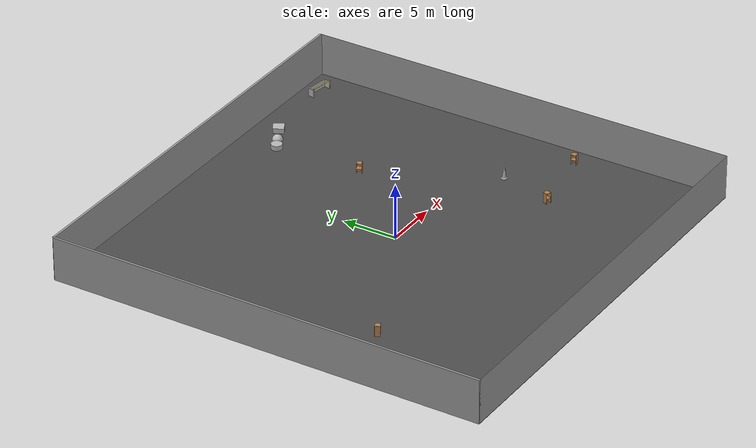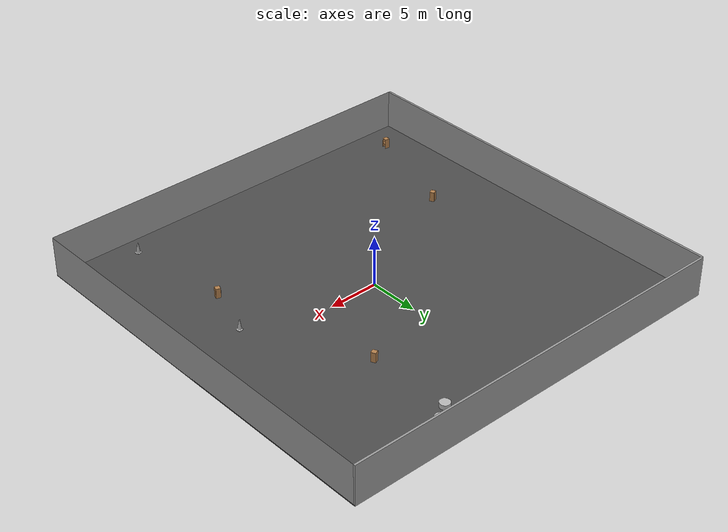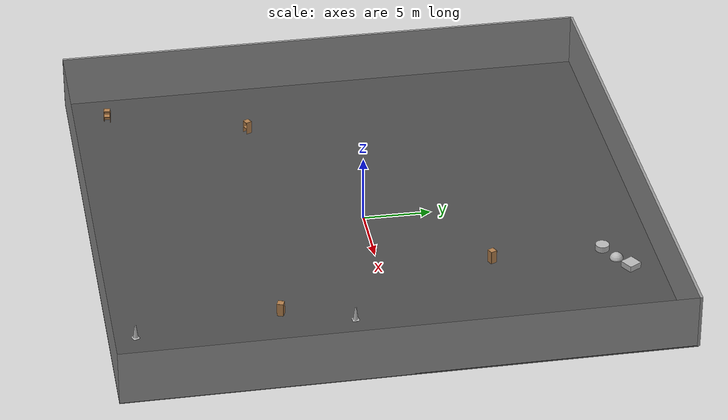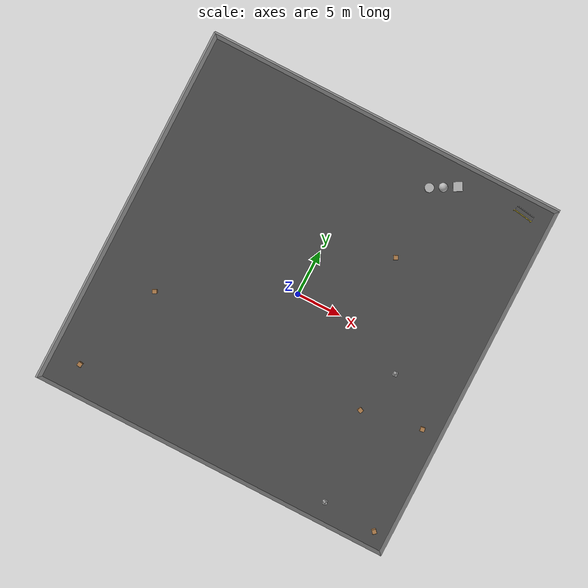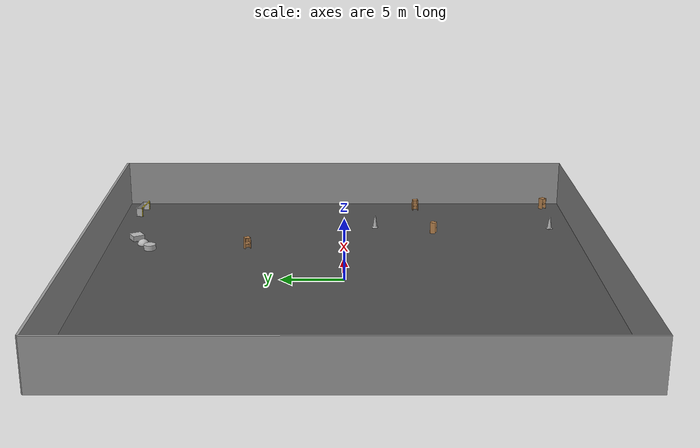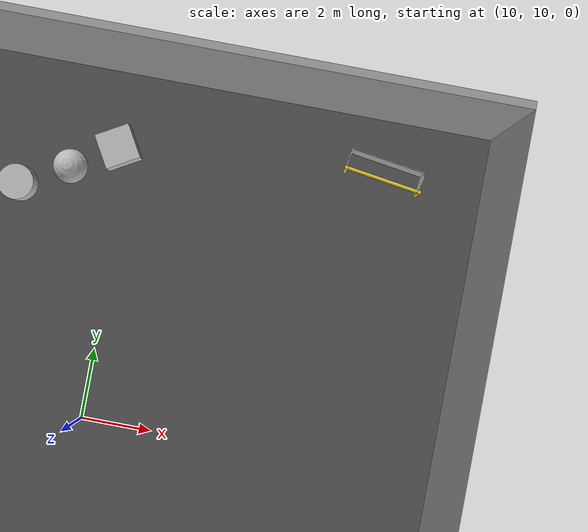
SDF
<sdf version="1.4">
 <world name="default">
  <light name="sun" type="directional">
   <pose>0 0 10 0 -0 0</pose>
   <diffuse>0.8 0.8 0.8 1</diffuse>
   <specular>0.2 0.2 0.2 1</specular>
   <attenuation>
    <range>1000</range>
    <constant>0.9</constant>
    <linear>0.01</linear>
    <quadratic>0.001</quadratic>
   </attenuation>
   <direction>-0.5 0.1 -0.9</direction>
  </light>
  <physics type="ode">
   <max_step_size>0.001</max_step_size>
   <real_time_factor>1</real_time_factor>
   <real_time_update_rate>1000</real_time_update_rate>
   <gravity>0 0 -9.8</gravity>
  </physics>
  <scene><ambient>0.4 0.4 0.4 1</ambient><background>0.7 0.7 0.7 1</background><shadows>1</shadows></scene>
  <model name="challenge_w1_0">
   <static>1</static>
   <link name="Wall_South">
    <collision name="Wall_South_Collision">
     <geometry><box><size>40 0 4</size></box></geometry>
     <pose>0 0 2 0 -0 0</pose>
    </collision>
    <visual name="Wall_South_Visual">
     <pose>0 0 2 0 -0 0</pose>
     <geometry><box><size>40 0 4</size></box></geometry>
     <material>
      <script><uri>file://media/materials/scripts/gazebo.material</uri><name>Gazebo/Grey</name></script>
     </material>
    </visual>
    <velocity_decay><linear>0</linear><angular>0</angular></velocity_decay>
    <pose>0 -20 0 0 -0 0</pose>
   </link>
   <link name="Wall_East">
    <collision name="Wall_21_Collision">
     <geometry><box><size>40 0 4</size></box></geometry>
     <pose>0 0 2 0 -0 0</pose>
    </collision>
    <visual name="Wall_21_Visual">
     <pose>0 0 2 0 -0 0</pose>
     <geometry><box><size>40 0 4</size></box></geometry>
     <material>
      <script><uri>file://media/materials/scripts/gazebo.material</uri><name>Gazebo/Grey</name></script>
     </material>
    </visual>
    <velocity_decay><linear>0</linear><angular>0</angular></velocity_decay>
    <pose>20 0 0 0 -0 1.5708</pose>
   </link>
   <link name="Wall_North">
    <collision name="Wall_22_Collision">
     <geometry><box><size>40 0.2 4</size></box></geometry>
     <pose>0 0 2 0 -0 0</pose>
    </collision>
    <visual name="Wall_22_Visual">
     <pose>0 0 2 0 -0 0</pose>
     <geometry><box><size>40 0.2 4</size></box></geometry>
     <material>
      <script><uri>file://media/materials/scripts/gazebo.material</uri><name>Gazebo/Grey</name></script>
     </material>
    </visual>
    <velocity_decay><linear>0</linear><angular>0</angular></velocity_decay>
    <pose>0 20 0 0 -0 0</pose>
   </link>
   <link name="Wall_West">
    <collision name="Wall_23_Collision">
     <geometry><box><size>40 0.2 4</size></box></geometry>
     <pose>0 0 2 0 -0 0</pose>
    </collision>
    <visual name="Wall_23_Visual">
     <pose>0 0 2 0 -0 0</pose>
     <geometry><box><size>40 0.2 4</size></box></geometry>
     <material>
      <script><uri>file://media/materials/scripts/gazebo.material</uri><name>Gazebo/Grey</name></script>
     </material>
    </visual>
    <velocity_decay><linear>0</linear><angular>0</angular></velocity_decay>
    <pose>-20 0 0 0 0 -1.5708</pose>
   </link>
   <static>1</static>
  </model>
  <model name="asphalt_plane">
   <static>1</static>
   <link name="link">
    <collision name="collision"><geometry><box><size>40 40 0.1</size></box></geometry></collision>
    <visual name="visual">
     <cast_shadows>0</cast_shadows>
     <geometry><box><size>40 40 0.1</size></box></geometry>
     <material>
      <script>
       <uri>model://asphalt_plane/materials/scripts</uri>
       <uri>model://asphalt_plane/materials/textures</uri>
       <name>vrc/asphalt</name>
      </script>
     </material>
    </visual>
    <velocity_decay><linear>0</linear><angular>0</angular></velocity_decay>
   </link>
  </model>
  <spherical_coordinates>
   <surface_model>EARTH_WGS84</surface_model>
   <latitude_deg>0</latitude_deg>
   <longitude_deg>0</longitude_deg>
   <elevation>0</elevation>
   <heading_deg>0</heading_deg>
  </spherical_coordinates>
  <include>
   <uri>model://cabinet</uri>
   <pose>-16.86898606450139 -17.03943860796139 0 0 0 2.9590393370824515</pose>
  </include>
  <include>
   <uri>model://cabinet</uri>
   <pose>-13.443243981055245 -6.675629792597606 0 0 0 2.0237383466131784</pose>
  </include>
  <include>
   <uri>model://cabinet</uri>
   <pose>7.320091836878511 8.101394443013833 0 0 0 0.42264085157470854</pose>
  </include>
  <include>
   <uri>model://textured_shapes</uri>
   <pose>8.38427864042501 16.983100628909973 0 0 0 2.0896663096231753</pose>
  </include>
  <include>
   <uri>model://construction_cone</uri>
   <pose>12.575278756929404 -18.08792347033492 0 0 0 0.3605880457422214</pose>
  </include>
  <include>
   <uri>model://cabinet</uri>
   <pose>11.394280660434713 -7.784752370675296 0 0 0 1.199615650631584</pose>
  </include>
  <include>
   <uri>model://construction_cone</uri>
   <pose>12.934695593623548 -2.7443049427850026 0 0 0 0.0829251895648511</pose>
  </include>
  <include>
   <uri>model://cabinet</uri>
   <pose>18.507799415074516 -18.386091497254778 0 0 0 0.7052340986384547</pose>
  </include>
  <include>
   <uri>model://cabinet</uri>
   <pose>18.068069690554797 -6.565969778212871 0 0 0 0.15037059708466075</pose>
  </include>
  <include>
   <uri>model://robocup_3Dsim_goal</uri>
   <pose>17.09991093126351 18.107411467642308 0 0 0 1.4225721667055378</pose>
  </include>
 </world>
</sdf>

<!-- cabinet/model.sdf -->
<sdf version="1.5">
  <model name="cabinet">
    <static>true</static>
    <link name="cabinet_bottom_plate">
      <inertial>
        <pose>0 0 -1 0 0 0</pose>
        <inertia>
          <ixx>2.050000</ixx>
          <ixy>0</ixy>
          <ixz>0</ixz>
          <iyy>2.050000</iyy>
          <iyz>0</iyz>
          <izz>2.050000</izz>
        </inertia>
        <mass>25.000000</mass>
      </inertial>
      <collision name="cabinet_bottom_plate_geom">
        <pose>0 0 0.010000 0 0 0</pose>
        <geometry>
          <box>
            <size>0.450000 0.450000 0.020000</size>
          </box>
        </geometry>
      </collision>
      <visual name="cabinet_bottom_plate_geom_visual">
        <pose>0 0 0.010000 0 0 0</pose>
        <geometry>
          <box>
            <size>0.450000 0.450000 0.020000</size>
          </box>
        </geometry>
        <material>
          <script>
            <uri>model://media/materials/scripts/gazebo.material</uri>
            <name>Gazebo/Wood</name>
          </script>
        </material>
      </visual>
      <collision name="cabinet_bottom_plate_geom_cabinet_back_plate">
        <pose>0.235000 0 0.510000 0 0 0</pose>
        <geometry>
          <box>
            <size>0.020000 0.450000 1.020000</size>
          </box>
        </geometry>
      </collision>
      <visual name="cabinet_bottom_plate_geom_cabinet_back_plate_visual">
        <pose>0.235000 0 0.510000 0 0 0</pose>
        <geometry>
          <box>
            <size>0.020000 0.450000 1.020000</size>
          </box>
        </geometry>
        <material>
          <script>
            <uri>model://media/materials/scripts/gazebo.material</uri>
            <name>Gazebo/Wood</name>
          </script>
        </material>
      </visual>
      <collision name="cabinet_bottom_plate_geom_cabinet_left_plate">
        <pose>0 0.235000 0.510000 0 0 0</pose>
        <geometry>
          <box>
            <size>0.450000 0.020000 1.020000</size>
          </box>
        </geometry>
      </collision>
      <visual name="cabinet_bottom_plate_geom_cabinet_left_plate_visual">
        <pose>0 0.235000 0.510000 0 0 0</pose>
        <geometry>
          <box>
            <size>0.450000 0.020000 1.020000</size>
          </box>
        </geometry>
        <material>
          <script>
            <uri>model://media/materials/scripts/gazebo.material</uri>
            <name>Gazebo/Wood</name>
          </script>
        </material>
      </visual>
      <collision name="cabinet_bottom_plate_geom_cabinet_middle_plate">
        <pose>0 0 0.510000 0 0 0</pose>
        <geometry>
          <box>
            <size>0.450000 0.450000 0.020000</size>
          </box>
        </geometry>
      </collision>
      <visual name="cabinet_bottom_plate_geom_cabinet_middle_plate_visual">
        <pose>0 0 0.510000 0 0 0</pose>
        <geometry>
          <box>
            <size>0.450000 0.450000 0.020000</size>
          </box>
        </geometry>
        <material>
          <script>
            <uri>model://media/materials/scripts/gazebo.material</uri>
            <name>Gazebo/Wood</name>
          </script>
        </material>
      </visual>
      <collision name="cabinet_bottom_plate_geom_cabinet_right_plate">
        <pose>0 -0.235000 0.510000 0 0 0</pose>
        <geometry>
          <box>
            <size>0.450000 0.020000 1.020000</size>
          </box>
        </geometry>
      </collision>
      <visual name="cabinet_bottom_plate_geom_cabinet_right_plate_visual">
        <pose>0 -0.235000 0.510000 0 0 0</pose>
        <geometry>
          <box>
            <size>0.450000 0.020000 1.020000</size>
          </box>
        </geometry>
        <material>
          <script>
            <uri>model://media/materials/scripts/gazebo.material</uri>
            <name>Gazebo/Wood</name>
          </script>
        </material>
      </visual>
      <collision name="cabinet_bottom_plate_geom_cabinet_top_plate">
        <pose>0 0 1.010000 0 0 0</pose>
        <geometry>
          <box>
            <size>0.450000 0.450000 0.020000</size>
          </box>
        </geometry>
      </collision>
      <visual name="cabinet_bottom_plate_geom_cabinet_top_plate_visual">
        <pose>0 0 1.010000 0 0 0</pose>
        <geometry>
          <box>
            <size>0.450000 0.450000 0.020000</size>
          </box>
        </geometry>
        <material>
          <script>
            <uri>model://media/materials/scripts/gazebo.material</uri>
            <name>Gazebo/Wood</name>
          </script>
        </material>
      </visual>
    </link>
  </model>
</sdf>

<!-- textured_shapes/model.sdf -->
<sdf version="1.6">
  <model name="textured_shapes">
    <pose>0 0 0.5 0 0 0</pose>
    <link name="box">
      <pose>0 -1.5 0 0 0 0</pose>
      <collision name="collision">
        <geometry>
          <box>
            <size>1 1 1</size>
          </box>
        </geometry>
      </collision>
      <visual name="visual">
        <geometry>
          <box>
            <size>1 1 1</size>
          </box>
        </geometry>
        <material>
          <script>
            <uri>model://../model_source/models/textured_shapes/materials/scripts</uri>
            <uri>model://../model_source/models/textured_shapes/materials/textures</uri>
            <name>TexturedShape/Squares</name>
          </script>
        </material>
      </visual>
    </link>
    <link name="sphere">
      <collision name="collision">
        <geometry>
          <sphere>
            <radius>0.5</radius>
          </sphere>
        </geometry>
      </collision>
      <visual name="visual">
        <geometry>
          <sphere>
            <radius>0.5</radius>
          </sphere>
        </geometry>
        <material>
          <script>
            <uri>model://../model_source/models/textured_shapes/materials/scripts</uri>
            <uri>model://../model_source/models/textured_shapes/materials/textures</uri>
            <name>TexturedShape/Squares</name>
          </script>
        </material>
      </visual>
    </link>
    <link name="cylinder">
      <pose>0 1.5 0 0 0 0</pose>
      <collision name="collision">
        <geometry>
          <cylinder>
            <radius>0.5</radius>
            <length>1</length>
          </cylinder>
        </geometry>
      </collision>
      <visual name="visual">
        <geometry>
          <cylinder>
            <radius>0.5</radius>
            <length>1</length>
          </cylinder>
        </geometry>
        <material>
          <script>
            <uri>model://../model_source/models/textured_shapes/materials/scripts</uri>
            <uri>model://../model_source/models/textured_shapes/materials/textures</uri>
            <name>TexturedShape/Squares</name>
          </script>
        </material>
      </visual>
    </link>
  </model>
</sdf>

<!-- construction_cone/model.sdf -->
<sdf version="1.5">
  <model name="Construction Cone">
    <link name="link">
      <collision name="collision">
        <geometry>
          <mesh>
            <scale>10 10 10</scale>
            <uri>file://isr-testbed/construction_cone/meshes/construction_cone.dae</uri>
          </mesh>
        </geometry>
      </collision>
      <visual name="visual">
        <geometry>
          <mesh>
            <scale>10 10 10</scale>
            <uri>file://isr-testbed/construction_cone/meshes/construction_cone.dae</uri>
          </mesh>
        </geometry>
      </visual>
    </link>
  </model>
</sdf>

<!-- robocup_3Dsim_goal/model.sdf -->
<sdf version="1.5">
  <model name="robocup_3d_goal">
    <static>true</static>
    <link name="left_post">
      <pose>0 1.05 0.45 0 0 0</pose>
      <collision name="collision">
        <geometry>
          <cylinder>
            <radius>0.05</radius>
            <length>0.9</length>
          </cylinder>
        </geometry>
      </collision>
      <visual name="visual">
        <geometry>
          <cylinder>
            <radius>0.05</radius>
            <length>0.9</length>
          </cylinder>
        </geometry>
        <material>
          <script>
            <uri>file://media/materials/scripts/gazebo.material</uri>
            <name>Gazebo/ZincYellow</name>
          </script>
        </material>
      </visual>
    </link>
    <link name="left_support_horiz_lower">
      <pose>0.30 1.05 0.01 0 0 0</pose>
      <collision name="collision">
        <geometry>
          <box>
            <size>0.50 0.02 0.02</size>
          </box>
        </geometry>
      </collision>
      <visual name="visual">
        <geometry>
          <box>
            <size>0.50 0.02 0.02</size>
          </box>
        </geometry>
        <material>
          <script>
            <uri>file://media/materials/scripts/gazebo.material</uri>
            <name>Gazebo/White</name>
          </script>
        </material>
      </visual>
    </link>
    <link name="left_support_horiz_upper">
      <pose>0.30 1.05 0.79 0 0 0</pose>
      <collision name="collision">
        <geometry>
          <box>
            <size>0.50 0.02 0.02</size>
          </box>
        </geometry>
      </collision>
      <visual name="visual">
        <geometry>
          <box>
            <size>0.50 0.02 0.02</size>
          </box>
        </geometry>
        <material>
          <script>
            <uri>file://media/materials/scripts/gazebo.material</uri>
            <name>Gazebo/White</name>
          </script>
        </material>
      </visual>
    </link>
    <link name="left_support_vertical">
      <pose>0.56 1.05 0.4 0 1.5708 0</pose>
      <collision name="collision">
        <geometry>
          <box>
            <size>0.80 0.02 0.02</size>
          </box>
        </geometry>
      </collision>
      <visual name="visual">
        <geometry>
          <box>
            <size>0.80 0.02 0.02</size>
          </box>
        </geometry>
        <material>
          <script>
            <uri>file://media/materials/scripts/gazebo.material</uri>
            <name>Gazebo/White</name>
          </script>
        </material>
      </visual>
    </link>
    <link name="right_support_horiz_lower">
      <pose>0.30 -1.05 0.01 0 0 0</pose>
      <collision name="collision">
        <geometry>
          <box>
            <size>0.50 0.02 0.02</size>
          </box>
        </geometry>
      </collision>
      <visual name="visual">
        <geometry>
          <box>
            <size>0.50 0.02 0.02</size>
          </box>
        </geometry>
        <material>
          <script>
            <uri>file://media/materials/scripts/gazebo.material</uri>
            <name>Gazebo/White</name>
          </script>
        </material>
      </visual>
    </link>
    <link name="right_support_horiz_upper">
      <pose>0.30 -1.05 0.79 0 0 0</pose>
      <collision name="collision">
        <geometry>
          <box>
            <size>0.50 0.02 0.02</size>
          </box>
        </geometry>
      </collision>
      <visual name="visual">
        <geometry>
          <box>
            <size>0.50 0.02 0.02</size>
          </box>
        </geometry>
        <material>
          <script>
            <uri>file://media/materials/scripts/gazebo.material</uri>
            <name>Gazebo/White</name>
          </script>
        </material>
      </visual>
    </link>
    <link name="right_support_vertical">
      <pose>0.56 -1.05 0.4 0 1.5708 0</pose>
      <collision name="collision">
        <geometry>
          <box>
            <size>0.80 0.02 0.02</size>
          </box>
        </geometry>
      </collision>
      <visual name="visual">
        <geometry>
          <box>
            <size>0.80 0.02 0.02</size>
          </box>
        </geometry>
        <material>
          <script>
            <uri>file://media/materials/scripts/gazebo.material</uri>
            <name>Gazebo/White</name>
          </script>
        </material>
      </visual>
    </link>
    <link name="center_support_horiz_lower">
      <pose>0.56 0 0.01 0 1.5708 0</pose>
      <collision name="collision">
        <geometry>
          <box>
            <size>0.02 2.08 0.02</size>
          </box>
        </geometry>
      </collision>
      <visual name="visual">
        <geometry>
          <box>
            <size>0.02 2.08 0.02</size>
          </box>
        </geometry>
        <material>
          <script>
            <uri>file://media/materials/scripts/gazebo.material</uri>
            <name>Gazebo/White</name>
          </script>
        </material>
      </visual>
    </link>
    <link name="center_support_horiz_upper">
      <pose>0.56 0 0.79 0 1.5708 0</pose>
      <collision name="collision">
        <geometry>
          <box>
            <size>0.02 2.08 0.02</size>
          </box>
        </geometry>
      </collision>
      <visual name="visual">
        <geometry>
          <box>
            <size>0.02 2.08 0.02</size>
          </box>
        </geometry>
        <material>
          <script>
            <uri>file://media/materials/scripts/gazebo.material</uri>
            <name>Gazebo/White</name>
          </script>
        </material>
      </visual>
    </link>
    <link name="right_post">
      <pose>0 -1.05 0.45 0 0 0</pose>
      <collision name="collision">
        <geometry>
          <cylinder>
            <radius>0.05</radius>
            <length>0.9</length>
          </cylinder>
        </geometry>
      </collision>
      <visual name="visual">
        <geometry>
          <cylinder>
            <radius>0.05</radius>
            <length>0.9</length>
          </cylinder>
        </geometry>
        <material>
          <script>
            <uri>file://media/materials/scripts/gazebo.material</uri>
            <name>Gazebo/ZincYellow</name>
          </script>
        </material>
      </visual>
    </link>
    <link name="crossbar">
      <pose>0 0 0.85 1.57 1.57 0</pose>
      <collision name="collision">
        <geometry>
          <cylinder>
            <radius>0.05</radius>
            <length>2.0</length>
          </cylinder>
        </geometry>
      </collision>
      <visual name="visual">
        <geometry>
          <cylinder>
            <radius>0.05</radius>
            <length>2.0</length>
          </cylinder>
        </geometry>
        <material>
          <script>
            <uri>file://media/materials/scripts/gazebo.material</uri>
            <name>Gazebo/ZincYellow</name>
          </script>
        </material>
      </visual>
    </link>
    <link name="center_net">
      <pose>0.56 0 0.40 0 0 0</pose>
      <collision name="collision">
        <geometry>
          <box>
            <size>0.01 2.1 0.80</size>
          </box>
        </geometry>
      </collision>
      <visual name="visual">
        <geometry>
          <box>
            <size>0.01 2.1 0.80</size>
          </box>
        </geometry>
        <material>
          <script>
            <uri>model://../model_source/models/robocup09_spl_field/materials/scripts/</uri>
            <uri>model://../model_source/models/robocup09_spl_field/materials/textures/</uri>
            <name>RoboCup/Net</name>
          </script>
        </material>
      </visual>
    </link>
    <link name="left_net">
      <pose>0.30 1.05 0.40 0 0 0</pose>
      <collision name="collision">
        <geometry>
          <box>
            <size>0.50 0.01 0.76</size>
          </box>
        </geometry>
      </collision>
      <visual name="visual">
        <geometry>
          <box>
            <size>0.50 0.01 0.76</size>
          </box>
        </geometry>
        <material>
          <script>
            <uri>model://../model_source/models/robocup09_spl_field/materials/scripts/</uri>
            <uri>model://../model_source/models/robocup09_spl_field/materials/textures/</uri>
            <name>RoboCup/Net</name>
          </script>
        </material>
      </visual>
    </link>
    <link name="right_net">
      <pose>0.30 -1.05 0.40 0 0 0</pose>
      <collision name="collision">
        <geometry>
          <box>
            <size>0.50 0.01 0.76</size>
          </box>
        </geometry>
      </collision>
      <visual name="visual">
        <geometry>
          <box>
            <size>0.50 0.01 0.76</size>
          </box>
        </geometry>
        <material>
          <script>
            <uri>model://../model_source/models/robocup09_spl_field/materials/scripts/</uri>
            <uri>model://../model_source/models/robocup09_spl_field/materials/textures/</uri>
            <name>RoboCup/Net</name>
          </script>
        </material>
      </visual>
    </link>
  </model>
</sdf>
